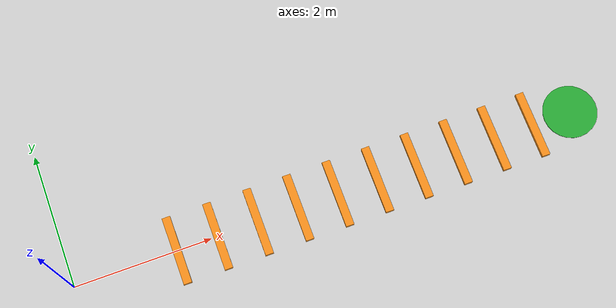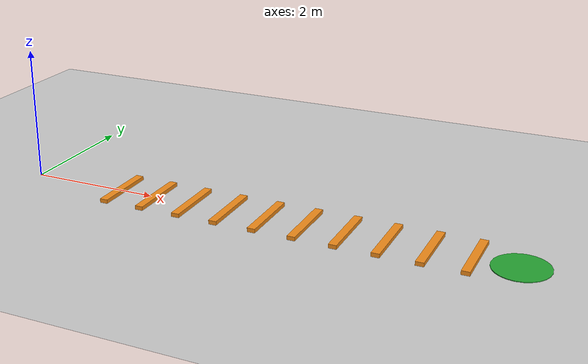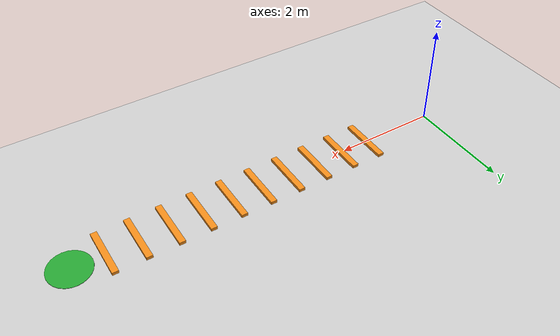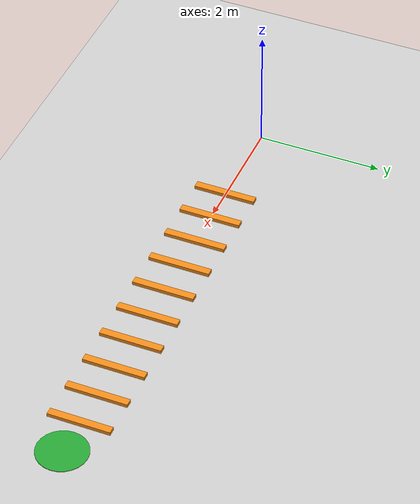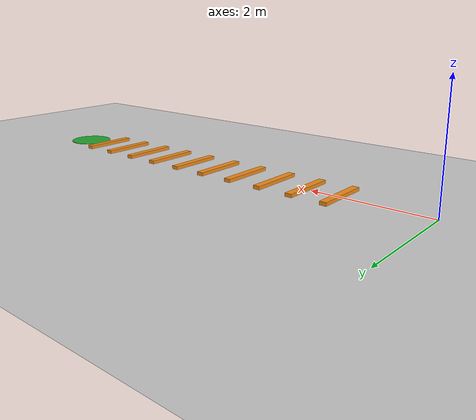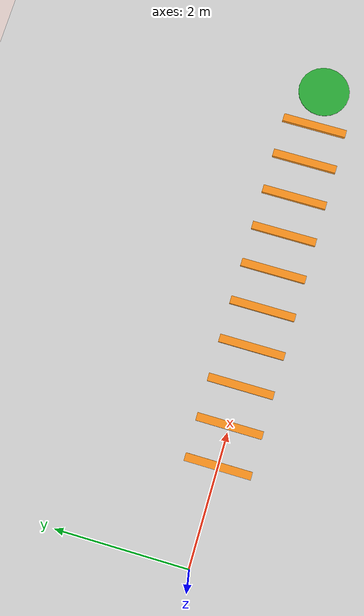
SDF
<?xml version="1.0" ?>
<!-- 由 omni_world.py 自动生成: scene=bumps seed=None -->
<sdf version="1.5">
  <world name="bumps">
    <physics type="ode">
      <type>world</type>
      <max_step_size>0.001</max_step_size>
      <real_time_update_rate>1000</real_time_update_rate>
      <iters>500</iters>
    </physics>
    <include><uri>model://sun</uri></include>
    <include><uri>model://ground_plane</uri></include>
    <model name="bump_0">
      <static>true</static>
      <pose>1.500 0.000 0.030 0.0000 0.0000 0.0000</pose>
      <link name="link">
        <collision name="collision">
          <geometry><box><size>0.120 1.000 0.060</size></box></geometry>
          <surface><friction><ode><mu>1.0</mu><mu2>1.0</mu2></ode></friction></surface>
        </collision>
        <visual name="visual">
          <geometry><box><size>0.120 1.000 0.060</size></box></geometry>
          <material><script><uri>file://media/materials/scripts/gazebo.material</uri>
            <name>Gazebo/Orange</name></script></material>
        </visual>
      </link>
    </model>
    <model name="bump_1">
      <static>true</static>
      <pose>2.100 0.000 0.030 0.0000 0.0000 0.0000</pose>
      <link name="link">
        <collision name="collision">
          <geometry><box><size>0.120 1.000 0.060</size></box></geometry>
          <surface><friction><ode><mu>1.0</mu><mu2>1.0</mu2></ode></friction></surface>
        </collision>
        <visual name="visual">
          <geometry><box><size>0.120 1.000 0.060</size></box></geometry>
          <material><script><uri>file://media/materials/scripts/gazebo.material</uri>
            <name>Gazebo/Orange</name></script></material>
        </visual>
      </link>
    </model>
    <model name="bump_2">
      <static>true</static>
      <pose>2.700 0.000 0.030 0.0000 0.0000 0.0000</pose>
      <link name="link">
        <collision name="collision">
          <geometry><box><size>0.120 1.000 0.060</size></box></geometry>
          <surface><friction><ode><mu>1.0</mu><mu2>1.0</mu2></ode></friction></surface>
        </collision>
        <visual name="visual">
          <geometry><box><size>0.120 1.000 0.060</size></box></geometry>
          <material><script><uri>file://media/materials/scripts/gazebo.material</uri>
            <name>Gazebo/Orange</name></script></material>
        </visual>
      </link>
    </model>
    <model name="bump_3">
      <static>true</static>
      <pose>3.300 0.000 0.030 0.0000 0.0000 0.0000</pose>
      <link name="link">
        <collision name="collision">
          <geometry><box><size>0.120 1.000 0.060</size></box></geometry>
          <surface><friction><ode><mu>1.0</mu><mu2>1.0</mu2></ode></friction></surface>
        </collision>
        <visual name="visual">
          <geometry><box><size>0.120 1.000 0.060</size></box></geometry>
          <material><script><uri>file://media/materials/scripts/gazebo.material</uri>
            <name>Gazebo/Orange</name></script></material>
        </visual>
      </link>
    </model>
    <model name="bump_4">
      <static>true</static>
      <pose>3.900 0.000 0.030 0.0000 0.0000 0.0000</pose>
      <link name="link">
        <collision name="collision">
          <geometry><box><size>0.120 1.000 0.060</size></box></geometry>
          <surface><friction><ode><mu>1.0</mu><mu2>1.0</mu2></ode></friction></surface>
        </collision>
        <visual name="visual">
          <geometry><box><size>0.120 1.000 0.060</size></box></geometry>
          <material><script><uri>file://media/materials/scripts/gazebo.material</uri>
            <name>Gazebo/Orange</name></script></material>
        </visual>
      </link>
    </model>
    <model name="bump_5">
      <static>true</static>
      <pose>4.500 0.000 0.030 0.0000 0.0000 0.0000</pose>
      <link name="link">
        <collision name="collision">
          <geometry><box><size>0.120 1.000 0.060</size></box></geometry>
          <surface><friction><ode><mu>1.0</mu><mu2>1.0</mu2></ode></friction></surface>
        </collision>
        <visual name="visual">
          <geometry><box><size>0.120 1.000 0.060</size></box></geometry>
          <material><script><uri>file://media/materials/scripts/gazebo.material</uri>
            <name>Gazebo/Orange</name></script></material>
        </visual>
      </link>
    </model>
    <model name="bump_6">
      <static>true</static>
      <pose>5.100 0.000 0.030 0.0000 0.0000 0.0000</pose>
      <link name="link">
        <collision name="collision">
          <geometry><box><size>0.120 1.000 0.060</size></box></geometry>
          <surface><friction><ode><mu>1.0</mu><mu2>1.0</mu2></ode></friction></surface>
        </collision>
        <visual name="visual">
          <geometry><box><size>0.120 1.000 0.060</size></box></geometry>
          <material><script><uri>file://media/materials/scripts/gazebo.material</uri>
            <name>Gazebo/Orange</name></script></material>
        </visual>
      </link>
    </model>
    <model name="bump_7">
      <static>true</static>
      <pose>5.700 0.000 0.030 0.0000 0.0000 0.0000</pose>
      <link name="link">
        <collision name="collision">
          <geometry><box><size>0.120 1.000 0.060</size></box></geometry>
          <surface><friction><ode><mu>1.0</mu><mu2>1.0</mu2></ode></friction></surface>
        </collision>
        <visual name="visual">
          <geometry><box><size>0.120 1.000 0.060</size></box></geometry>
          <material><script><uri>file://media/materials/scripts/gazebo.material</uri>
            <name>Gazebo/Orange</name></script></material>
        </visual>
      </link>
    </model>
    <model name="bump_8">
      <static>true</static>
      <pose>6.300 0.000 0.030 0.0000 0.0000 0.0000</pose>
      <link name="link">
        <collision name="collision">
          <geometry><box><size>0.120 1.000 0.060</size></box></geometry>
          <surface><friction><ode><mu>1.0</mu><mu2>1.0</mu2></ode></friction></surface>
        </collision>
        <visual name="visual">
          <geometry><box><size>0.120 1.000 0.060</size></box></geometry>
          <material><script><uri>file://media/materials/scripts/gazebo.material</uri>
            <name>Gazebo/Orange</name></script></material>
        </visual>
      </link>
    </model>
    <model name="bump_9">
      <static>true</static>
      <pose>6.900 0.000 0.030 0.0000 0.0000 0.0000</pose>
      <link name="link">
        <collision name="collision">
          <geometry><box><size>0.120 1.000 0.060</size></box></geometry>
          <surface><friction><ode><mu>1.0</mu><mu2>1.0</mu2></ode></friction></surface>
        </collision>
        <visual name="visual">
          <geometry><box><size>0.120 1.000 0.060</size></box></geometry>
          <material><script><uri>file://media/materials/scripts/gazebo.material</uri>
            <name>Gazebo/Orange</name></script></material>
        </visual>
      </link>
    </model>
    <model name="goal">
      <static>true</static>
      <pose>7.500 0.000 0.005 0 0 0</pose>
      <link name="link">
        <visual name="visual">
          <geometry><cylinder><radius>0.400</radius><length>0.01</length></cylinder></geometry>
          <material><script><uri>file://media/materials/scripts/gazebo.material</uri>
            <name>Gazebo/Green</name></script></material>
        </visual>
      </link>
    </model>

  </world>
</sdf>
